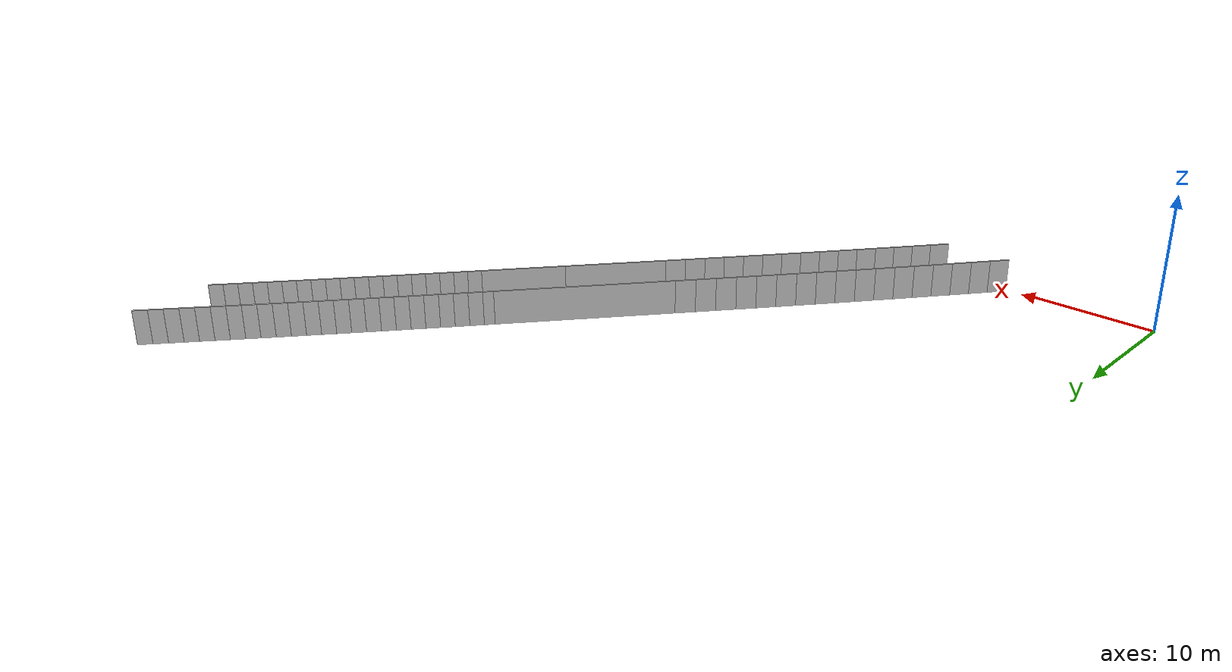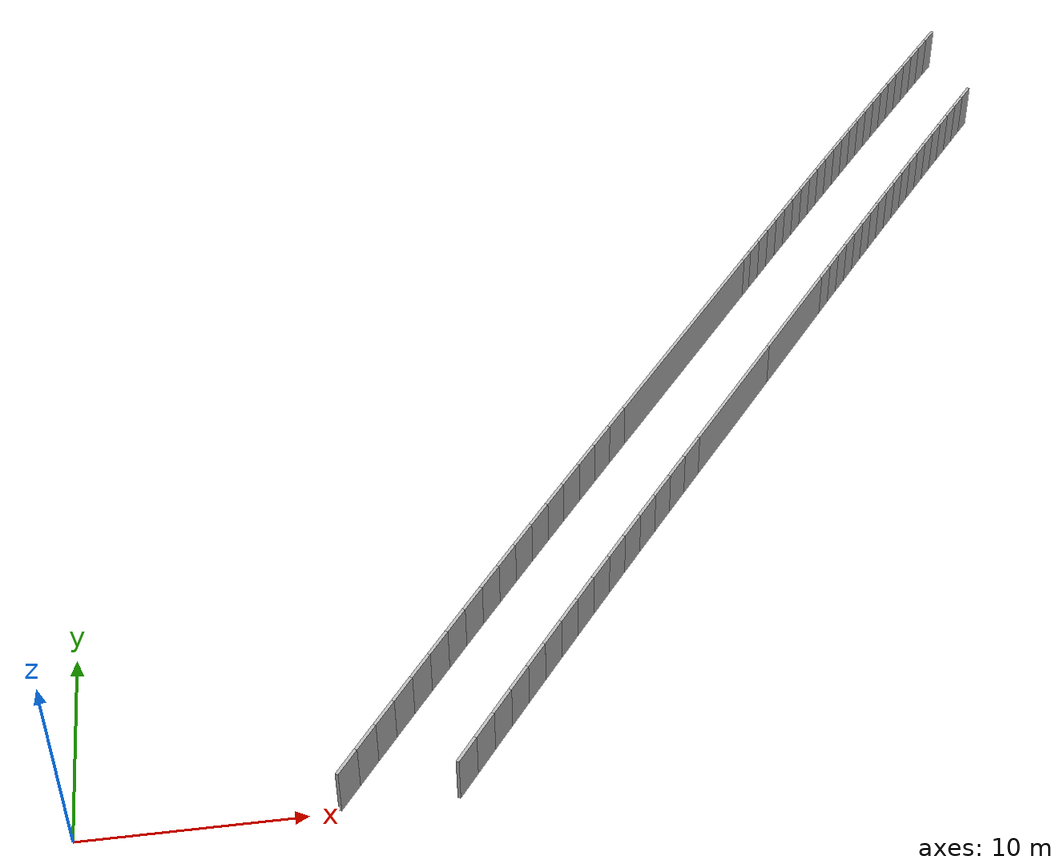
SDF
<?xml version="1.0" ?>
<sdf version="1.6">
  <model name="sps_0637">
    <pose frame="">0 0 0 0 -0 0</pose>
    <static>1</static>
    <self_collide>0</self_collide>
    <allow_auto_disable>0</allow_auto_disable>
    <link name="Wall298">
      <kinematic>0</kinematic>
      <gravity>1</gravity>
      <self_collide>0</self_collide>
      <collision name="collision">
        <geometry>
          <box>
            <size>7.56129 0.15 2.5</size>
          </box>
        </geometry>
        <pose frame="">0 0 0 0 -0 0</pose>
      </collision>
      <visual name="visual">
        <geometry>
          <box>
            <size>7.56129 0.15 2.5</size>
          </box>
        </geometry>
        <pose frame="">0 0 0 0 -0 0</pose>
        <cast_shadows>1</cast_shadows>
        <transparency>0.0</transparency>
      </visual>
      <pose frame="">32.1695 21.0881 1.25 0 -0 0.916836</pose>
    </link>
    <link name="Wall299">
      <kinematic>0</kinematic>
      <gravity>1</gravity>
      <self_collide>0</self_collide>
      <collision name="collision">
        <geometry>
          <box>
            <size>6.16538 0.15 2.5</size>
          </box>
        </geometry>
        <pose frame="">0 0 0 0 -0 0</pose>
      </collision>
      <visual name="visual">
        <geometry>
          <box>
            <size>6.16538 0.15 2.5</size>
          </box>
        </geometry>
        <pose frame="">0 0 0 0 -0 0</pose>
        <cast_shadows>1</cast_shadows>
        <transparency>0.0</transparency>
      </visual>
      <pose frame="">36.3447 26.5354 1.25 0 -0 0.916836</pose>
    </link>
    <link name="Wall442">
      <kinematic>0</kinematic>
      <gravity>1</gravity>
      <self_collide>0</self_collide>
      <collision name="collision">
        <geometry>
          <box>
            <size>0.759106 0.15 2.5</size>
          </box>
        </geometry>
        <pose frame="">0 0 0 0 -0 0</pose>
      </collision>
      <visual name="visual">
        <geometry>
          <box>
            <size>0.759106 0.15 2.5</size>
          </box>
        </geometry>
        <pose frame="">0 0 0 0 -0 0</pose>
        <cast_shadows>1</cast_shadows>
        <transparency>0.0</transparency>
      </visual>
      <pose frame="">34.7003 31.1949 1.25 0 0 -2.22476</pose>
    </link>
    <link name="Wall443">
      <kinematic>0</kinematic>
      <gravity>1</gravity>
      <self_collide>0</self_collide>
      <collision name="collision">
        <geometry>
          <box>
            <size>12.9573 0.15 2.5</size>
          </box>
        </geometry>
        <pose frame="">0 0 0 0 -0 0</pose>
      </collision>
      <visual name="visual">
        <geometry>
          <box>
            <size>12.9573 0.15 2.5</size>
          </box>
        </geometry>
        <pose frame="">0 0 0 0 -0 0</pose>
        <cast_shadows>1</cast_shadows>
        <transparency>0.0</transparency>
      </visual>
      <pose frame="">30.5283 25.7517 1.25 0 0 -2.22476</pose>
    </link>
    <link name="Wall4795">
      <kinematic>0</kinematic>
      <gravity>1</gravity>
      <self_collide>0</self_collide>
      <collision name="collision">
        <geometry>
          <box>
            <size>1.4966 0.15 2.5</size>
          </box>
        </geometry>
        <pose frame="">0 0 0 0 -0 0</pose>
      </collision>
      <visual name="visual">
        <geometry>
          <box>
            <size>1.4966 0.15 2.5</size>
          </box>
        </geometry>
        <pose frame="">0 0 0 0 -0 0</pose>
        <cast_shadows>1</cast_shadows>
        <transparency>0.0</transparency>
      </visual>
      <pose frame="">29.4143 17.4937 1.25 0 0 -2.22504</pose>
    </link>
    <link name="Wall4796">
      <kinematic>0</kinematic>
      <gravity>1</gravity>
      <self_collide>0</self_collide>
      <collision name="collision">
        <geometry>
          <box>
            <size>1.49643 0.15 2.5</size>
          </box>
        </geometry>
        <pose frame="">0 0 0 0 -0 0</pose>
      </collision>
      <visual name="visual">
        <geometry>
          <box>
            <size>1.49643 0.15 2.5</size>
          </box>
        </geometry>
        <pose frame="">0 0 0 0 -0 0</pose>
        <cast_shadows>1</cast_shadows>
        <transparency>0.0</transparency>
      </visual>
      <pose frame="">28.5045 16.3055 1.25 0 0 -2.22348</pose>
    </link>
    <link name="Wall4797">
      <kinematic>0</kinematic>
      <gravity>1</gravity>
      <self_collide>0</self_collide>
      <collision name="collision">
        <geometry>
          <box>
            <size>1.49642 0.15 2.5</size>
          </box>
        </geometry>
        <pose frame="">0 0 0 0 -0 0</pose>
      </collision>
      <visual name="visual">
        <geometry>
          <box>
            <size>1.49642 0.15 2.5</size>
          </box>
        </geometry>
        <pose frame="">0 0 0 0 -0 0</pose>
        <cast_shadows>1</cast_shadows>
        <transparency>0.0</transparency>
      </visual>
      <pose frame="">27.5967 15.1159 1.25 0 0 -2.22179</pose>
    </link>
    <link name="Wall4798">
      <kinematic>0</kinematic>
      <gravity>1</gravity>
      <self_collide>0</self_collide>
      <collision name="collision">
        <geometry>
          <box>
            <size>1.49666 0.15 2.5</size>
          </box>
        </geometry>
        <pose frame="">0 0 0 0 -0 0</pose>
      </collision>
      <visual name="visual">
        <geometry>
          <box>
            <size>1.49666 0.15 2.5</size>
          </box>
        </geometry>
        <pose frame="">0 0 0 0 -0 0</pose>
        <cast_shadows>1</cast_shadows>
        <transparency>0.0</transparency>
      </visual>
      <pose frame="">26.6908 13.9247 1.25 0 0 -2.22019</pose>
    </link>
    <link name="Wall4799">
      <kinematic>0</kinematic>
      <gravity>1</gravity>
      <self_collide>0</self_collide>
      <collision name="collision">
        <geometry>
          <box>
            <size>1.49647 0.15 2.5</size>
          </box>
        </geometry>
        <pose frame="">0 0 0 0 -0 0</pose>
      </collision>
      <visual name="visual">
        <geometry>
          <box>
            <size>1.49647 0.15 2.5</size>
          </box>
        </geometry>
        <pose frame="">0 0 0 0 -0 0</pose>
        <cast_shadows>1</cast_shadows>
        <transparency>0.0</transparency>
      </visual>
      <pose frame="">25.7866 12.7321 1.25 0 0 -2.21874</pose>
    </link>
    <link name="Wall4800">
      <kinematic>0</kinematic>
      <gravity>1</gravity>
      <self_collide>0</self_collide>
      <collision name="collision">
        <geometry>
          <box>
            <size>1.49647 0.15 2.5</size>
          </box>
        </geometry>
        <pose frame="">0 0 0 0 -0 0</pose>
      </collision>
      <visual name="visual">
        <geometry>
          <box>
            <size>1.49647 0.15 2.5</size>
          </box>
        </geometry>
        <pose frame="">0 0 0 0 -0 0</pose>
        <cast_shadows>1</cast_shadows>
        <transparency>0.0</transparency>
      </visual>
      <pose frame="">24.8845 11.5381 1.25 0 0 -2.21691</pose>
    </link>
    <link name="Wall4801">
      <kinematic>0</kinematic>
      <gravity>1</gravity>
      <self_collide>0</self_collide>
      <collision name="collision">
        <geometry>
          <box>
            <size>1.49658 0.15 2.5</size>
          </box>
        </geometry>
        <pose frame="">0 0 0 0 -0 0</pose>
      </collision>
      <visual name="visual">
        <geometry>
          <box>
            <size>1.49658 0.15 2.5</size>
          </box>
        </geometry>
        <pose frame="">0 0 0 0 -0 0</pose>
        <cast_shadows>1</cast_shadows>
        <transparency>0.0</transparency>
      </visual>
      <pose frame="">23.9843 10.3426 1.25 0 0 -2.21552</pose>
    </link>
    <link name="Wall4802">
      <kinematic>0</kinematic>
      <gravity>1</gravity>
      <self_collide>0</self_collide>
      <collision name="collision">
        <geometry>
          <box>
            <size>1.49655 0.15 2.5</size>
          </box>
        </geometry>
        <pose frame="">0 0 0 0 -0 0</pose>
      </collision>
      <visual name="visual">
        <geometry>
          <box>
            <size>1.49655 0.15 2.5</size>
          </box>
        </geometry>
        <pose frame="">0 0 0 0 -0 0</pose>
        <cast_shadows>1</cast_shadows>
        <transparency>0.0</transparency>
      </visual>
      <pose frame="">23.0859 9.14571 1.25 0 0 -2.21386</pose>
    </link>
    <link name="Wall4803">
      <kinematic>0</kinematic>
      <gravity>1</gravity>
      <self_collide>0</self_collide>
      <collision name="collision">
        <geometry>
          <box>
            <size>1.49687 0.15 2.5</size>
          </box>
        </geometry>
        <pose frame="">0 0 0 0 -0 0</pose>
      </collision>
      <visual name="visual">
        <geometry>
          <box>
            <size>1.49687 0.15 2.5</size>
          </box>
        </geometry>
        <pose frame="">0 0 0 0 -0 0</pose>
        <cast_shadows>1</cast_shadows>
        <transparency>0.0</transparency>
      </visual>
      <pose frame="">22.1894 7.94719 1.25 0 0 -2.21217</pose>
    </link>
    <link name="Wall4804">
      <kinematic>0</kinematic>
      <gravity>1</gravity>
      <self_collide>0</self_collide>
      <collision name="collision">
        <geometry>
          <box>
            <size>1.49648 0.15 2.5</size>
          </box>
        </geometry>
        <pose frame="">0 0 0 0 -0 0</pose>
      </collision>
      <visual name="visual">
        <geometry>
          <box>
            <size>1.49648 0.15 2.5</size>
          </box>
        </geometry>
        <pose frame="">0 0 0 0 -0 0</pose>
        <cast_shadows>1</cast_shadows>
        <transparency>0.0</transparency>
      </visual>
      <pose frame="">21.2949 6.7473 1.25 0 0 -2.21073</pose>
    </link>
    <link name="Wall4805">
      <kinematic>0</kinematic>
      <gravity>1</gravity>
      <self_collide>0</self_collide>
      <collision name="collision">
        <geometry>
          <box>
            <size>1.49646 0.15 2.5</size>
          </box>
        </geometry>
        <pose frame="">0 0 0 0 -0 0</pose>
      </collision>
      <visual name="visual">
        <geometry>
          <box>
            <size>1.49646 0.15 2.5</size>
          </box>
        </geometry>
        <pose frame="">0 0 0 0 -0 0</pose>
        <cast_shadows>1</cast_shadows>
        <transparency>0.0</transparency>
      </visual>
      <pose frame="">20.4022 5.54619 1.25 0 0 -2.20907</pose>
    </link>
    <link name="Wall4806">
      <kinematic>0</kinematic>
      <gravity>1</gravity>
      <self_collide>0</self_collide>
      <collision name="collision">
        <geometry>
          <box>
            <size>1.49659 0.15 2.5</size>
          </box>
        </geometry>
        <pose frame="">0 0 0 0 -0 0</pose>
      </collision>
      <visual name="visual">
        <geometry>
          <box>
            <size>1.49659 0.15 2.5</size>
          </box>
        </geometry>
        <pose frame="">0 0 0 0 -0 0</pose>
        <cast_shadows>1</cast_shadows>
        <transparency>0.0</transparency>
      </visual>
      <pose frame="">19.5114 4.34367 1.25 0 0 -2.20768</pose>
    </link>
    <link name="Wall4807">
      <kinematic>0</kinematic>
      <gravity>1</gravity>
      <self_collide>0</self_collide>
      <collision name="collision">
        <geometry>
          <box>
            <size>1.49653 0.15 2.5</size>
          </box>
        </geometry>
        <pose frame="">0 0 0 0 -0 0</pose>
      </collision>
      <visual name="visual">
        <geometry>
          <box>
            <size>1.49653 0.15 2.5</size>
          </box>
        </geometry>
        <pose frame="">0 0 0 0 -0 0</pose>
        <cast_shadows>1</cast_shadows>
        <transparency>0.0</transparency>
      </visual>
      <pose frame="">18.6226 3.13969 1.25 0 0 -2.20584</pose>
    </link>
    <link name="Wall4808">
      <kinematic>0</kinematic>
      <gravity>1</gravity>
      <self_collide>0</self_collide>
      <collision name="collision">
        <geometry>
          <box>
            <size>1.49646 0.15 2.5</size>
          </box>
        </geometry>
        <pose frame="">0 0 0 0 -0 0</pose>
      </collision>
      <visual name="visual">
        <geometry>
          <box>
            <size>1.49646 0.15 2.5</size>
          </box>
        </geometry>
        <pose frame="">0 0 0 0 -0 0</pose>
        <cast_shadows>1</cast_shadows>
        <transparency>0.0</transparency>
      </visual>
      <pose frame="">17.7357 1.93431 1.25 0 0 -2.2044</pose>
    </link>
    <link name="Wall4809">
      <kinematic>0</kinematic>
      <gravity>1</gravity>
      <self_collide>0</self_collide>
      <collision name="collision">
        <geometry>
          <box>
            <size>1.49663 0.15 2.5</size>
          </box>
        </geometry>
        <pose frame="">0 0 0 0 -0 0</pose>
      </collision>
      <visual name="visual">
        <geometry>
          <box>
            <size>1.49663 0.15 2.5</size>
          </box>
        </geometry>
        <pose frame="">0 0 0 0 -0 0</pose>
        <cast_shadows>1</cast_shadows>
        <transparency>0.0</transparency>
      </visual>
      <pose frame="">16.8507 0.727492 1.25 0 0 -2.2027</pose>
    </link>
    <link name="Wall6591">
      <kinematic>0</kinematic>
      <gravity>1</gravity>
      <self_collide>0</self_collide>
      <collision name="collision">
        <geometry>
          <box>
            <size>1.5031 0.15 2.5</size>
          </box>
        </geometry>
        <pose frame="">0 0 0 0 -0 0</pose>
      </collision>
      <visual name="visual">
        <geometry>
          <box>
            <size>1.5031 0.15 2.5</size>
          </box>
        </geometry>
        <pose frame="">0 0 0 0 -0 0</pose>
        <cast_shadows>1</cast_shadows>
        <transparency>0.0</transparency>
      </visual>
      <pose frame="">26.1298 20.0133 1.25 0 0 -2.22494</pose>
    </link>
    <link name="Wall6592">
      <kinematic>0</kinematic>
      <gravity>1</gravity>
      <self_collide>0</self_collide>
      <collision name="collision">
        <geometry>
          <box>
            <size>1.50314 0.15 2.5</size>
          </box>
        </geometry>
        <pose frame="">0 0 0 0 -0 0</pose>
      </collision>
      <visual name="visual">
        <geometry>
          <box>
            <size>1.50314 0.15 2.5</size>
          </box>
        </geometry>
        <pose frame="">0 0 0 0 -0 0</pose>
        <cast_shadows>1</cast_shadows>
        <transparency>0.0</transparency>
      </visual>
      <pose frame="">25.2161 18.8197 1.25 0 0 -2.22324</pose>
    </link>
    <link name="Wall6593">
      <kinematic>0</kinematic>
      <gravity>1</gravity>
      <self_collide>0</self_collide>
      <collision name="collision">
        <geometry>
          <box>
            <size>1.503 0.15 2.5</size>
          </box>
        </geometry>
        <pose frame="">0 0 0 0 -0 0</pose>
      </collision>
      <visual name="visual">
        <geometry>
          <box>
            <size>1.503 0.15 2.5</size>
          </box>
        </geometry>
        <pose frame="">0 0 0 0 -0 0</pose>
        <cast_shadows>1</cast_shadows>
        <transparency>0.0</transparency>
      </visual>
      <pose frame="">24.3045 17.6247 1.25 0 0 -2.22178</pose>
    </link>
    <link name="Wall6594">
      <kinematic>0</kinematic>
      <gravity>1</gravity>
      <self_collide>0</self_collide>
      <collision name="collision">
        <geometry>
          <box>
            <size>1.50319 0.15 2.5</size>
          </box>
        </geometry>
        <pose frame="">0 0 0 0 -0 0</pose>
      </collision>
      <visual name="visual">
        <geometry>
          <box>
            <size>1.50319 0.15 2.5</size>
          </box>
        </geometry>
        <pose frame="">0 0 0 0 -0 0</pose>
        <cast_shadows>1</cast_shadows>
        <transparency>0.0</transparency>
      </visual>
      <pose frame="">23.3946 16.4283 1.25 0 0 -2.2202</pose>
    </link>
    <link name="Wall6595">
      <kinematic>0</kinematic>
      <gravity>1</gravity>
      <self_collide>0</self_collide>
      <collision name="collision">
        <geometry>
          <box>
            <size>1.50327 0.15 2.5</size>
          </box>
        </geometry>
        <pose frame="">0 0 0 0 -0 0</pose>
      </collision>
      <visual name="visual">
        <geometry>
          <box>
            <size>1.50327 0.15 2.5</size>
          </box>
        </geometry>
        <pose frame="">0 0 0 0 -0 0</pose>
        <cast_shadows>1</cast_shadows>
        <transparency>0.0</transparency>
      </visual>
      <pose frame="">22.4866 15.2303 1.25 0 0 -2.21853</pose>
    </link>
    <link name="Wall6596">
      <kinematic>0</kinematic>
      <gravity>1</gravity>
      <self_collide>0</self_collide>
      <collision name="collision">
        <geometry>
          <box>
            <size>1.50309 0.15 2.5</size>
          </box>
        </geometry>
        <pose frame="">0 0 0 0 -0 0</pose>
      </collision>
      <visual name="visual">
        <geometry>
          <box>
            <size>1.50309 0.15 2.5</size>
          </box>
        </geometry>
        <pose frame="">0 0 0 0 -0 0</pose>
        <cast_shadows>1</cast_shadows>
        <transparency>0.0</transparency>
      </visual>
      <pose frame="">21.5804 14.0309 1.25 0 0 -2.21709</pose>
    </link>
    <link name="Wall6597">
      <kinematic>0</kinematic>
      <gravity>1</gravity>
      <self_collide>0</self_collide>
      <collision name="collision">
        <geometry>
          <box>
            <size>1.50305 0.15 2.5</size>
          </box>
        </geometry>
        <pose frame="">0 0 0 0 -0 0</pose>
      </collision>
      <visual name="visual">
        <geometry>
          <box>
            <size>1.50305 0.15 2.5</size>
          </box>
        </geometry>
        <pose frame="">0 0 0 0 -0 0</pose>
        <cast_shadows>1</cast_shadows>
        <transparency>0.0</transparency>
      </visual>
      <pose frame="">20.6762 12.8302 1.25 0 0 -2.21543</pose>
    </link>
    <link name="Wall6598">
      <kinematic>0</kinematic>
      <gravity>1</gravity>
      <self_collide>0</self_collide>
      <collision name="collision">
        <geometry>
          <box>
            <size>1.50322 0.15 2.5</size>
          </box>
        </geometry>
        <pose frame="">0 0 0 0 -0 0</pose>
      </collision>
      <visual name="visual">
        <geometry>
          <box>
            <size>1.50322 0.15 2.5</size>
          </box>
        </geometry>
        <pose frame="">0 0 0 0 -0 0</pose>
        <cast_shadows>1</cast_shadows>
        <transparency>0.0</transparency>
      </visual>
      <pose frame="">19.7739 11.628 1.25 0 0 -2.21383</pose>
    </link>
    <link name="Wall6599">
      <kinematic>0</kinematic>
      <gravity>1</gravity>
      <self_collide>0</self_collide>
      <collision name="collision">
        <geometry>
          <box>
            <size>1.50314 0.15 2.5</size>
          </box>
        </geometry>
        <pose frame="">0 0 0 0 -0 0</pose>
      </collision>
      <visual name="visual">
        <geometry>
          <box>
            <size>1.50314 0.15 2.5</size>
          </box>
        </geometry>
        <pose frame="">0 0 0 0 -0 0</pose>
        <cast_shadows>1</cast_shadows>
        <transparency>0.0</transparency>
      </visual>
      <pose frame="">18.8735 10.4244 1.25 0 0 -2.2124</pose>
    </link>
    <link name="Wall6600">
      <kinematic>0</kinematic>
      <gravity>1</gravity>
      <self_collide>0</self_collide>
      <collision name="collision">
        <geometry>
          <box>
            <size>1.5029 0.15 2.5</size>
          </box>
        </geometry>
        <pose frame="">0 0 0 0 -0 0</pose>
      </collision>
      <visual name="visual">
        <geometry>
          <box>
            <size>1.5029 0.15 2.5</size>
          </box>
        </geometry>
        <pose frame="">0 0 0 0 -0 0</pose>
        <cast_shadows>1</cast_shadows>
        <transparency>0.0</transparency>
      </visual>
      <pose frame="">17.975 9.2195 1.25 0 0 -2.21069</pose>
    </link>
    <link name="Wall6601">
      <kinematic>0</kinematic>
      <gravity>1</gravity>
      <self_collide>0</self_collide>
      <collision name="collision">
        <geometry>
          <box>
            <size>1.50302 0.15 2.5</size>
          </box>
        </geometry>
        <pose frame="">0 0 0 0 -0 0</pose>
      </collision>
      <visual name="visual">
        <geometry>
          <box>
            <size>1.50302 0.15 2.5</size>
          </box>
        </geometry>
        <pose frame="">0 0 0 0 -0 0</pose>
        <cast_shadows>1</cast_shadows>
        <transparency>0.0</transparency>
      </visual>
      <pose frame="">17.0785 8.0132 1.25 0 0 -2.20916</pose>
    </link>
    <link name="Wall6602">
      <kinematic>0</kinematic>
      <gravity>1</gravity>
      <self_collide>0</self_collide>
      <collision name="collision">
        <geometry>
          <box>
            <size>1.50321 0.15 2.5</size>
          </box>
        </geometry>
        <pose frame="">0 0 0 0 -0 0</pose>
      </collision>
      <visual name="visual">
        <geometry>
          <box>
            <size>1.50321 0.15 2.5</size>
          </box>
        </geometry>
        <pose frame="">0 0 0 0 -0 0</pose>
        <cast_shadows>1</cast_shadows>
        <transparency>0.0</transparency>
      </visual>
      <pose frame="">16.1837 6.80537 1.25 0 0 -2.20756</pose>
    </link>
    <link name="Wall6603">
      <kinematic>0</kinematic>
      <gravity>1</gravity>
      <self_collide>0</self_collide>
      <collision name="collision">
        <geometry>
          <box>
            <size>1.50309 0.15 2.5</size>
          </box>
        </geometry>
        <pose frame="">0 0 0 0 -0 0</pose>
      </collision>
      <visual name="visual">
        <geometry>
          <box>
            <size>1.50309 0.15 2.5</size>
          </box>
        </geometry>
        <pose frame="">0 0 0 0 -0 0</pose>
        <cast_shadows>1</cast_shadows>
        <transparency>0.0</transparency>
      </visual>
      <pose frame="">15.2909 5.59608 1.25 0 0 -2.20595</pose>
    </link>
    <link name="Wall6604">
      <kinematic>0</kinematic>
      <gravity>1</gravity>
      <self_collide>0</self_collide>
      <collision name="collision">
        <geometry>
          <box>
            <size>1.50308 0.15 2.5</size>
          </box>
        </geometry>
        <pose frame="">0 0 0 0 -0 0</pose>
      </collision>
      <visual name="visual">
        <geometry>
          <box>
            <size>1.50308 0.15 2.5</size>
          </box>
        </geometry>
        <pose frame="">0 0 0 0 -0 0</pose>
        <cast_shadows>1</cast_shadows>
        <transparency>0.0</transparency>
      </visual>
      <pose frame="">14.4002 4.38539 1.25 0 0 -2.20429</pose>
    </link>
    <link name="Wall6605">
      <kinematic>0</kinematic>
      <gravity>1</gravity>
      <self_collide>0</self_collide>
      <collision name="collision">
        <geometry>
          <box>
            <size>1.50311 0.15 2.5</size>
          </box>
        </geometry>
        <pose frame="">0 0 0 0 -0 0</pose>
      </collision>
      <visual name="visual">
        <geometry>
          <box>
            <size>1.50311 0.15 2.5</size>
          </box>
        </geometry>
        <pose frame="">0 0 0 0 -0 0</pose>
        <cast_shadows>1</cast_shadows>
        <transparency>0.0</transparency>
      </visual>
      <pose frame="">13.5113 3.17329 1.25 0 0 -2.20281</pose>
    </link>
    <link name="Wall6606">
      <kinematic>0</kinematic>
      <gravity>1</gravity>
      <self_collide>0</self_collide>
      <collision name="collision">
        <geometry>
          <box>
            <size>1.50314 0.15 2.5</size>
          </box>
        </geometry>
        <pose frame="">0 0 0 0 -0 0</pose>
      </collision>
      <visual name="visual">
        <geometry>
          <box>
            <size>1.50314 0.15 2.5</size>
          </box>
        </geometry>
        <pose frame="">0 0 0 0 -0 0</pose>
        <cast_shadows>1</cast_shadows>
        <transparency>0.0</transparency>
      </visual>
      <pose frame="">12.6243 1.95979 1.25 0 0 -2.20119</pose>
    </link>
    <link name="Wall6607">
      <kinematic>0</kinematic>
      <gravity>1</gravity>
      <self_collide>0</self_collide>
      <collision name="collision">
        <geometry>
          <box>
            <size>1.50286 0.15 2.5</size>
          </box>
        </geometry>
        <pose frame="">0 0 0 0 -0 0</pose>
      </collision>
      <visual name="visual">
        <geometry>
          <box>
            <size>1.50286 0.15 2.5</size>
          </box>
        </geometry>
        <pose frame="">0 0 0 0 -0 0</pose>
        <cast_shadows>1</cast_shadows>
        <transparency>0.0</transparency>
      </visual>
      <pose frame="">11.7392 0.744979 1.25 0 0 -2.19962</pose>
    </link>
    <link name="Wall9991">
      <kinematic>0</kinematic>
      <gravity>1</gravity>
      <self_collide>0</self_collide>
      <collision name="collision">
        <geometry>
          <box>
            <size>1.01905 0.15 2.5</size>
          </box>
        </geometry>
        <pose frame="">0 0 0 0 -0 0</pose>
      </collision>
      <visual name="visual">
        <geometry>
          <box>
            <size>1.01905 0.15 2.5</size>
          </box>
        </geometry>
        <pose frame="">0 0 0 0 -0 0</pose>
        <cast_shadows>1</cast_shadows>
        <transparency>0.0</transparency>
      </visual>
      <pose frame="">49.0699 49.5492 1.25 0 0 -2.24731</pose>
    </link>
    <link name="Wall9992">
      <kinematic>0</kinematic>
      <gravity>1</gravity>
      <self_collide>0</self_collide>
      <collision name="collision">
        <geometry>
          <box>
            <size>1.01912 0.15 2.5</size>
          </box>
        </geometry>
        <pose frame="">0 0 0 0 -0 0</pose>
      </collision>
      <visual name="visual">
        <geometry>
          <box>
            <size>1.01912 0.15 2.5</size>
          </box>
        </geometry>
        <pose frame="">0 0 0 0 -0 0</pose>
        <cast_shadows>1</cast_shadows>
        <transparency>0.0</transparency>
      </visual>
      <pose frame="">48.4323 48.7542 1.25 0 0 -2.24625</pose>
    </link>
    <link name="Wall9993">
      <kinematic>0</kinematic>
      <gravity>1</gravity>
      <self_collide>0</self_collide>
      <collision name="collision">
        <geometry>
          <box>
            <size>1.01915 0.15 2.5</size>
          </box>
        </geometry>
        <pose frame="">0 0 0 0 -0 0</pose>
      </collision>
      <visual name="visual">
        <geometry>
          <box>
            <size>1.01915 0.15 2.5</size>
          </box>
        </geometry>
        <pose frame="">0 0 0 0 -0 0</pose>
        <cast_shadows>1</cast_shadows>
        <transparency>0.0</transparency>
      </visual>
      <pose frame="">47.7955 47.9585 1.25 0 0 -2.24523</pose>
    </link>
    <link name="Wall9994">
      <kinematic>0</kinematic>
      <gravity>1</gravity>
      <self_collide>0</self_collide>
      <collision name="collision">
        <geometry>
          <box>
            <size>1.01912 0.15 2.5</size>
          </box>
        </geometry>
        <pose frame="">0 0 0 0 -0 0</pose>
      </collision>
      <visual name="visual">
        <geometry>
          <box>
            <size>1.01912 0.15 2.5</size>
          </box>
        </geometry>
        <pose frame="">0 0 0 0 -0 0</pose>
        <cast_shadows>1</cast_shadows>
        <transparency>0.0</transparency>
      </visual>
      <pose frame="">47.1596 47.1621 1.25 0 0 -2.24395</pose>
    </link>
    <link name="Wall9995">
      <kinematic>0</kinematic>
      <gravity>1</gravity>
      <self_collide>0</self_collide>
      <collision name="collision">
        <geometry>
          <box>
            <size>1.01929 0.15 2.5</size>
          </box>
        </geometry>
        <pose frame="">0 0 0 0 -0 0</pose>
      </collision>
      <visual name="visual">
        <geometry>
          <box>
            <size>1.01929 0.15 2.5</size>
          </box>
        </geometry>
        <pose frame="">0 0 0 0 -0 0</pose>
        <cast_shadows>1</cast_shadows>
        <transparency>0.0</transparency>
      </visual>
      <pose frame="">46.5246 46.3649 1.25 0 0 -2.2429</pose>
    </link>
    <link name="Wall9996">
      <kinematic>0</kinematic>
      <gravity>1</gravity>
      <self_collide>0</self_collide>
      <collision name="collision">
        <geometry>
          <box>
            <size>1.01938 0.15 2.5</size>
          </box>
        </geometry>
        <pose frame="">0 0 0 0 -0 0</pose>
      </collision>
      <visual name="visual">
        <geometry>
          <box>
            <size>1.01938 0.15 2.5</size>
          </box>
        </geometry>
        <pose frame="">0 0 0 0 -0 0</pose>
        <cast_shadows>1</cast_shadows>
        <transparency>0.0</transparency>
      </visual>
      <pose frame="">45.8903 45.5669 1.25 0 0 -2.24176</pose>
    </link>
    <link name="Wall9997">
      <kinematic>0</kinematic>
      <gravity>1</gravity>
      <self_collide>0</self_collide>
      <collision name="collision">
        <geometry>
          <box>
            <size>1.01917 0.15 2.5</size>
          </box>
        </geometry>
        <pose frame="">0 0 0 0 -0 0</pose>
      </collision>
      <visual name="visual">
        <geometry>
          <box>
            <size>1.01917 0.15 2.5</size>
          </box>
        </geometry>
        <pose frame="">0 0 0 0 -0 0</pose>
        <cast_shadows>1</cast_shadows>
        <transparency>0.0</transparency>
      </visual>
      <pose frame="">45.2569 44.7683 1.25 0 0 -2.24093</pose>
    </link>
    <link name="Wall9998">
      <kinematic>0</kinematic>
      <gravity>1</gravity>
      <self_collide>0</self_collide>
      <collision name="collision">
        <geometry>
          <box>
            <size>1.01909 0.15 2.5</size>
          </box>
        </geometry>
        <pose frame="">0 0 0 0 -0 0</pose>
      </collision>
      <visual name="visual">
        <geometry>
          <box>
            <size>1.01909 0.15 2.5</size>
          </box>
        </geometry>
        <pose frame="">0 0 0 0 -0 0</pose>
        <cast_shadows>1</cast_shadows>
        <transparency>0.0</transparency>
      </visual>
      <pose frame="">44.6244 43.9692 1.25 0 0 -2.23977</pose>
    </link>
    <link name="Wall9999">
      <kinematic>0</kinematic>
      <gravity>1</gravity>
      <self_collide>0</self_collide>
      <collision name="collision">
        <geometry>
          <box>
            <size>1.01914 0.15 2.5</size>
          </box>
        </geometry>
        <pose frame="">0 0 0 0 -0 0</pose>
      </collision>
      <visual name="visual">
        <geometry>
          <box>
            <size>1.01914 0.15 2.5</size>
          </box>
        </geometry>
        <pose frame="">0 0 0 0 -0 0</pose>
        <cast_shadows>1</cast_shadows>
        <transparency>0.0</transparency>
      </visual>
      <pose frame="">43.9929 43.1694 1.25 0 0 -2.23866</pose>
    </link>
    <link name="Wall10000">
      <kinematic>0</kinematic>
      <gravity>1</gravity>
      <self_collide>0</self_collide>
      <collision name="collision">
        <geometry>
          <box>
            <size>1.01936 0.15 2.5</size>
          </box>
        </geometry>
        <pose frame="">0 0 0 0 -0 0</pose>
      </collision>
      <visual name="visual">
        <geometry>
          <box>
            <size>1.01936 0.15 2.5</size>
          </box>
        </geometry>
        <pose frame="">0 0 0 0 -0 0</pose>
        <cast_shadows>1</cast_shadows>
        <transparency>0.0</transparency>
      </visual>
      <pose frame="">43.3621 42.3688 1.25 0 0 -2.23758</pose>
    </link>
    <link name="Wall10001">
      <kinematic>0</kinematic>
      <gravity>1</gravity>
      <self_collide>0</self_collide>
      <collision name="collision">
        <geometry>
          <box>
            <size>1.019 0.15 2.5</size>
          </box>
        </geometry>
        <pose frame="">0 0 0 0 -0 0</pose>
      </collision>
      <visual name="visual">
        <geometry>
          <box>
            <size>1.019 0.15 2.5</size>
          </box>
        </geometry>
        <pose frame="">0 0 0 0 -0 0</pose>
        <cast_shadows>1</cast_shadows>
        <transparency>0.0</transparency>
      </visual>
      <pose frame="">42.7321 41.5676 1.25 0 0 -2.23656</pose>
    </link>
    <link name="Wall10002">
      <kinematic>0</kinematic>
      <gravity>1</gravity>
      <self_collide>0</self_collide>
      <collision name="collision">
        <geometry>
          <box>
            <size>1.01914 0.15 2.5</size>
          </box>
        </geometry>
        <pose frame="">0 0 0 0 -0 0</pose>
      </collision>
      <visual name="visual">
        <geometry>
          <box>
            <size>1.01914 0.15 2.5</size>
          </box>
        </geometry>
        <pose frame="">0 0 0 0 -0 0</pose>
        <cast_shadows>1</cast_shadows>
        <transparency>0.0</transparency>
      </visual>
      <pose frame="">42.1031 40.7658 1.25 0 0 -2.23546</pose>
    </link>
    <link name="Wall10003">
      <kinematic>0</kinematic>
      <gravity>1</gravity>
      <self_collide>0</self_collide>
      <collision name="collision">
        <geometry>
          <box>
            <size>1.01927 0.15 2.5</size>
          </box>
        </geometry>
        <pose frame="">0 0 0 0 -0 0</pose>
      </collision>
      <visual name="visual">
        <geometry>
          <box>
            <size>1.01927 0.15 2.5</size>
          </box>
        </geometry>
        <pose frame="">0 0 0 0 -0 0</pose>
        <cast_shadows>1</cast_shadows>
        <transparency>0.0</transparency>
      </visual>
      <pose frame="">41.4749 39.9632 1.25 0 0 -2.23437</pose>
    </link>
    <link name="Wall10004">
      <kinematic>0</kinematic>
      <gravity>1</gravity>
      <self_collide>0</self_collide>
      <collision name="collision">
        <geometry>
          <box>
            <size>1.01916 0.15 2.5</size>
          </box>
        </geometry>
        <pose frame="">0 0 0 0 -0 0</pose>
      </collision>
      <visual name="visual">
        <geometry>
          <box>
            <size>1.01916 0.15 2.5</size>
          </box>
        </geometry>
        <pose frame="">0 0 0 0 -0 0</pose>
        <cast_shadows>1</cast_shadows>
        <transparency>0.0</transparency>
      </visual>
      <pose frame="">40.8476 39.1599 1.25 0 0 -2.23316</pose>
    </link>
    <link name="Wall10005">
      <kinematic>0</kinematic>
      <gravity>1</gravity>
      <self_collide>0</self_collide>
      <collision name="collision">
        <geometry>
          <box>
            <size>1.01915 0.15 2.5</size>
          </box>
        </geometry>
        <pose frame="">0 0 0 0 -0 0</pose>
      </collision>
      <visual name="visual">
        <geometry>
          <box>
            <size>1.01915 0.15 2.5</size>
          </box>
        </geometry>
        <pose frame="">0 0 0 0 -0 0</pose>
        <cast_shadows>1</cast_shadows>
        <transparency>0.0</transparency>
      </visual>
      <pose frame="">40.2212 38.356 1.25 0 0 -2.23226</pose>
    </link>
    <link name="Wall10006">
      <kinematic>0</kinematic>
      <gravity>1</gravity>
      <self_collide>0</self_collide>
      <collision name="collision">
        <geometry>
          <box>
            <size>1.01906 0.15 2.5</size>
          </box>
        </geometry>
        <pose frame="">0 0 0 0 -0 0</pose>
      </collision>
      <visual name="visual">
        <geometry>
          <box>
            <size>1.01906 0.15 2.5</size>
          </box>
        </geometry>
        <pose frame="">0 0 0 0 -0 0</pose>
        <cast_shadows>1</cast_shadows>
        <transparency>0.0</transparency>
      </visual>
      <pose frame="">39.5956 37.5515 1.25 0 0 -2.23127</pose>
    </link>
    <link name="Wall10007">
      <kinematic>0</kinematic>
      <gravity>1</gravity>
      <self_collide>0</self_collide>
      <collision name="collision">
        <geometry>
          <box>
            <size>1.01913 0.15 2.5</size>
          </box>
        </geometry>
        <pose frame="">0 0 0 0 -0 0</pose>
      </collision>
      <visual name="visual">
        <geometry>
          <box>
            <size>1.01913 0.15 2.5</size>
          </box>
        </geometry>
        <pose frame="">0 0 0 0 -0 0</pose>
        <cast_shadows>1</cast_shadows>
        <transparency>0.0</transparency>
      </visual>
      <pose frame="">38.9709 36.7463 1.25 0 0 -2.23</pose>
    </link>
    <link name="Wall10008">
      <kinematic>0</kinematic>
      <gravity>1</gravity>
      <self_collide>0</self_collide>
      <collision name="collision">
        <geometry>
          <box>
            <size>1.01924 0.15 2.5</size>
          </box>
        </geometry>
        <pose frame="">0 0 0 0 -0 0</pose>
      </collision>
      <visual name="visual">
        <geometry>
          <box>
            <size>1.01924 0.15 2.5</size>
          </box>
        </geometry>
        <pose frame="">0 0 0 0 -0 0</pose>
        <cast_shadows>1</cast_shadows>
        <transparency>0.0</transparency>
      </visual>
      <pose frame="">38.347 35.9404 1.25 0 0 -2.22916</pose>
    </link>
    <link name="Wall10009">
      <kinematic>0</kinematic>
      <gravity>1</gravity>
      <self_collide>0</self_collide>
      <collision name="collision">
        <geometry>
          <box>
            <size>1.01898 0.15 2.5</size>
          </box>
        </geometry>
        <pose frame="">0 0 0 0 -0 0</pose>
      </collision>
      <visual name="visual">
        <geometry>
          <box>
            <size>1.01898 0.15 2.5</size>
          </box>
        </geometry>
        <pose frame="">0 0 0 0 -0 0</pose>
        <cast_shadows>1</cast_shadows>
        <transparency>0.0</transparency>
      </visual>
      <pose frame="">37.7241 35.1339 1.25 0 0 -2.22785</pose>
    </link>
    <link name="Wall10010">
      <kinematic>0</kinematic>
      <gravity>1</gravity>
      <self_collide>0</self_collide>
      <collision name="collision">
        <geometry>
          <box>
            <size>1.01927 0.15 2.5</size>
          </box>
        </geometry>
        <pose frame="">0 0 0 0 -0 0</pose>
      </collision>
      <visual name="visual">
        <geometry>
          <box>
            <size>1.01927 0.15 2.5</size>
          </box>
        </geometry>
        <pose frame="">0 0 0 0 -0 0</pose>
        <cast_shadows>1</cast_shadows>
        <transparency>0.0</transparency>
      </visual>
      <pose frame="">37.102 34.3267 1.25 0 0 -2.22694</pose>
    </link>
    <link name="Wall10011">
      <kinematic>0</kinematic>
      <gravity>1</gravity>
      <self_collide>0</self_collide>
      <collision name="collision">
        <geometry>
          <box>
            <size>1.01922 0.15 2.5</size>
          </box>
        </geometry>
        <pose frame="">0 0 0 0 -0 0</pose>
      </collision>
      <visual name="visual">
        <geometry>
          <box>
            <size>1.01922 0.15 2.5</size>
          </box>
        </geometry>
        <pose frame="">0 0 0 0 -0 0</pose>
        <cast_shadows>1</cast_shadows>
        <transparency>0.0</transparency>
      </visual>
      <pose frame="">36.4806 33.5187 1.25 0 0 -2.2257</pose>
    </link>
    <link name="Wall10012">
      <kinematic>0</kinematic>
      <gravity>1</gravity>
      <self_collide>0</self_collide>
      <collision name="collision">
        <geometry>
          <box>
            <size>1.01901 0.15 2.5</size>
          </box>
        </geometry>
        <pose frame="">0 0 0 0 -0 0</pose>
      </collision>
      <visual name="visual">
        <geometry>
          <box>
            <size>1.01901 0.15 2.5</size>
          </box>
        </geometry>
        <pose frame="">0 0 0 0 -0 0</pose>
        <cast_shadows>1</cast_shadows>
        <transparency>0.0</transparency>
      </visual>
      <pose frame="">35.8603 32.7101 1.25 0 0 -2.22465</pose>
    </link>
    <link name="Wall10013">
      <kinematic>0</kinematic>
      <gravity>1</gravity>
      <self_collide>0</self_collide>
      <collision name="collision">
        <geometry>
          <box>
            <size>1.01922 0.15 2.5</size>
          </box>
        </geometry>
        <pose frame="">0 0 0 0 -0 0</pose>
      </collision>
      <visual name="visual">
        <geometry>
          <box>
            <size>1.01922 0.15 2.5</size>
          </box>
        </geometry>
        <pose frame="">0 0 0 0 -0 0</pose>
        <cast_shadows>1</cast_shadows>
        <transparency>0.0</transparency>
      </visual>
      <pose frame="">35.2408 31.9009 1.25 0 0 -2.22374</pose>
    </link>
    <link name="Wall10040">
      <kinematic>0</kinematic>
      <gravity>1</gravity>
      <self_collide>0</self_collide>
      <collision name="collision">
        <geometry>
          <box>
            <size>1.01394 0.15 2.5</size>
          </box>
        </geometry>
        <pose frame="">0 0 0 0 -0 0</pose>
      </collision>
      <visual name="visual">
        <geometry>
          <box>
            <size>1.01394 0.15 2.5</size>
          </box>
        </geometry>
        <pose frame="">0 0 0 0 -0 0</pose>
        <cast_shadows>1</cast_shadows>
        <transparency>0.0</transparency>
      </visual>
      <pose frame="">49.7558 43.779 1.25 0 0 -2.24294</pose>
    </link>
    <link name="Wall10041">
      <kinematic>0</kinematic>
      <gravity>1</gravity>
      <self_collide>0</self_collide>
      <collision name="collision">
        <geometry>
          <box>
            <size>1.01425 0.15 2.5</size>
          </box>
        </geometry>
        <pose frame="">0 0 0 0 -0 0</pose>
      </collision>
      <visual name="visual">
        <geometry>
          <box>
            <size>1.01425 0.15 2.5</size>
          </box>
        </geometry>
        <pose frame="">0 0 0 0 -0 0</pose>
        <cast_shadows>1</cast_shadows>
        <transparency>0.0</transparency>
      </visual>
      <pose frame="">49.1248 42.9851 1.25 0 0 -2.24178</pose>
    </link>
    <link name="Wall10042">
      <kinematic>0</kinematic>
      <gravity>1</gravity>
      <self_collide>0</self_collide>
      <collision name="collision">
        <geometry>
          <box>
            <size>1.01424 0.15 2.5</size>
          </box>
        </geometry>
        <pose frame="">0 0 0 0 -0 0</pose>
      </collision>
      <visual name="visual">
        <geometry>
          <box>
            <size>1.01424 0.15 2.5</size>
          </box>
        </geometry>
        <pose frame="">0 0 0 0 -0 0</pose>
        <cast_shadows>1</cast_shadows>
        <transparency>0.0</transparency>
      </visual>
      <pose frame="">48.4946 42.1904 1.25 0 0 -2.24079</pose>
    </link>
    <link name="Wall10043">
      <kinematic>0</kinematic>
      <gravity>1</gravity>
      <self_collide>0</self_collide>
      <collision name="collision">
        <geometry>
          <box>
            <size>1.01423 0.15 2.5</size>
          </box>
        </geometry>
        <pose frame="">0 0 0 0 -0 0</pose>
      </collision>
      <visual name="visual">
        <geometry>
          <box>
            <size>1.01423 0.15 2.5</size>
          </box>
        </geometry>
        <pose frame="">0 0 0 0 -0 0</pose>
        <cast_shadows>1</cast_shadows>
        <transparency>0.0</transparency>
      </visual>
      <pose frame="">47.8652 41.3951 1.25 0 0 -2.23972</pose>
    </link>
    <link name="Wall10044">
      <kinematic>0</kinematic>
      <gravity>1</gravity>
      <self_collide>0</self_collide>
      <collision name="collision">
        <geometry>
          <box>
            <size>1.01424 0.15 2.5</size>
          </box>
        </geometry>
        <pose frame="">0 0 0 0 -0 0</pose>
      </collision>
      <visual name="visual">
        <geometry>
          <box>
            <size>1.01424 0.15 2.5</size>
          </box>
        </geometry>
        <pose frame="">0 0 0 0 -0 0</pose>
        <cast_shadows>1</cast_shadows>
        <transparency>0.0</transparency>
      </visual>
      <pose frame="">47.2367 40.5991 1.25 0 0 -2.23856</pose>
    </link>
    <link name="Wall10045">
      <kinematic>0</kinematic>
      <gravity>1</gravity>
      <self_collide>0</self_collide>
      <collision name="collision">
        <geometry>
          <box>
            <size>1.01405 0.15 2.5</size>
          </box>
        </geometry>
        <pose frame="">0 0 0 0 -0 0</pose>
      </collision>
      <visual name="visual">
        <geometry>
          <box>
            <size>1.01405 0.15 2.5</size>
          </box>
        </geometry>
        <pose frame="">0 0 0 0 -0 0</pose>
        <cast_shadows>1</cast_shadows>
        <transparency>0.0</transparency>
      </visual>
      <pose frame="">46.609 39.8025 1.25 0 0 -2.23764</pose>
    </link>
    <link name="Wall10046">
      <kinematic>0</kinematic>
      <gravity>1</gravity>
      <self_collide>0</self_collide>
      <collision name="collision">
        <geometry>
          <box>
            <size>1.01447 0.15 2.5</size>
          </box>
        </geometry>
        <pose frame="">0 0 0 0 -0 0</pose>
      </collision>
      <visual name="visual">
        <geometry>
          <box>
            <size>1.01447 0.15 2.5</size>
          </box>
        </geometry>
        <pose frame="">0 0 0 0 -0 0</pose>
        <cast_shadows>1</cast_shadows>
        <transparency>0.0</transparency>
      </visual>
      <pose frame="">45.9822 39.0051 1.25 0 0 -2.23632</pose>
    </link>
    <link name="Wall10047">
      <kinematic>0</kinematic>
      <gravity>1</gravity>
      <self_collide>0</self_collide>
      <collision name="collision">
        <geometry>
          <box>
            <size>1.01416 0.15 2.5</size>
          </box>
        </geometry>
        <pose frame="">0 0 0 0 -0 0</pose>
      </collision>
      <visual name="visual">
        <geometry>
          <box>
            <size>1.01416 0.15 2.5</size>
          </box>
        </geometry>
        <pose frame="">0 0 0 0 -0 0</pose>
        <cast_shadows>1</cast_shadows>
        <transparency>0.0</transparency>
      </visual>
      <pose frame="">45.3563 38.2069 1.25 0 0 -2.23525</pose>
    </link>
    <link name="Wall10048">
      <kinematic>0</kinematic>
      <gravity>1</gravity>
      <self_collide>0</self_collide>
      <collision name="collision">
        <geometry>
          <box>
            <size>1.01419 0.15 2.5</size>
          </box>
        </geometry>
        <pose frame="">0 0 0 0 -0 0</pose>
      </collision>
      <visual name="visual">
        <geometry>
          <box>
            <size>1.01419 0.15 2.5</size>
          </box>
        </geometry>
        <pose frame="">0 0 0 0 -0 0</pose>
        <cast_shadows>1</cast_shadows>
        <transparency>0.0</transparency>
      </visual>
      <pose frame="">44.7313 37.4082 1.25 0 0 -2.23431</pose>
    </link>
    <link name="Wall10049">
      <kinematic>0</kinematic>
      <gravity>1</gravity>
      <self_collide>0</self_collide>
      <collision name="collision">
        <geometry>
          <box>
            <size>1.0141 0.15 2.5</size>
          </box>
        </geometry>
        <pose frame="">0 0 0 0 -0 0</pose>
      </collision>
      <visual name="visual">
        <geometry>
          <box>
            <size>1.0141 0.15 2.5</size>
          </box>
        </geometry>
        <pose frame="">0 0 0 0 -0 0</pose>
        <cast_shadows>1</cast_shadows>
        <transparency>0.0</transparency>
      </visual>
      <pose frame="">44.1071 36.6089 1.25 0 0 -2.23332</pose>
    </link>
    <link name="Wall10050">
      <kinematic>0</kinematic>
      <gravity>1</gravity>
      <self_collide>0</self_collide>
      <collision name="collision">
        <geometry>
          <box>
            <size>1.01429 0.15 2.5</size>
          </box>
        </geometry>
        <pose frame="">0 0 0 0 -0 0</pose>
      </collision>
      <visual name="visual">
        <geometry>
          <box>
            <size>1.01429 0.15 2.5</size>
          </box>
        </geometry>
        <pose frame="">0 0 0 0 -0 0</pose>
        <cast_shadows>1</cast_shadows>
        <transparency>0.0</transparency>
      </visual>
      <pose frame="">43.4838 35.8089 1.25 0 0 -2.23218</pose>
    </link>
    <link name="Wall10051">
      <kinematic>0</kinematic>
      <gravity>1</gravity>
      <self_collide>0</self_collide>
      <collision name="collision">
        <geometry>
          <box>
            <size>1.01417 0.15 2.5</size>
          </box>
        </geometry>
        <pose frame="">0 0 0 0 -0 0</pose>
      </collision>
      <visual name="visual">
        <geometry>
          <box>
            <size>1.01417 0.15 2.5</size>
          </box>
        </geometry>
        <pose frame="">0 0 0 0 -0 0</pose>
        <cast_shadows>1</cast_shadows>
        <transparency>0.0</transparency>
      </visual>
      <pose frame="">42.8613 35.0082 1.25 0 0 -2.23105</pose>
    </link>
    <link name="Wall10052">
      <kinematic>0</kinematic>
      <gravity>1</gravity>
      <self_collide>0</self_collide>
      <collision name="collision">
        <geometry>
          <box>
            <size>1.01426 0.15 2.5</size>
          </box>
        </geometry>
        <pose frame="">0 0 0 0 -0 0</pose>
      </collision>
      <visual name="visual">
        <geometry>
          <box>
            <size>1.01426 0.15 2.5</size>
          </box>
        </geometry>
        <pose frame="">0 0 0 0 -0 0</pose>
        <cast_shadows>1</cast_shadows>
        <transparency>0.0</transparency>
      </visual>
      <pose frame="">42.2396 34.2068 1.25 0 0 -2.22999</pose>
    </link>
    <link name="Wall10053">
      <kinematic>0</kinematic>
      <gravity>1</gravity>
      <self_collide>0</self_collide>
      <collision name="collision">
        <geometry>
          <box>
            <size>1.01427 0.15 2.5</size>
          </box>
        </geometry>
        <pose frame="">0 0 0 0 -0 0</pose>
      </collision>
      <visual name="visual">
        <geometry>
          <box>
            <size>1.01427 0.15 2.5</size>
          </box>
        </geometry>
        <pose frame="">0 0 0 0 -0 0</pose>
        <cast_shadows>1</cast_shadows>
        <transparency>0.0</transparency>
      </visual>
      <pose frame="">41.6189 33.4047 1.25 0 0 -2.22892</pose>
    </link>
    <link name="Wall10054">
      <kinematic>0</kinematic>
      <gravity>1</gravity>
      <self_collide>0</self_collide>
      <collision name="collision">
        <geometry>
          <box>
            <size>1.01414 0.15 2.5</size>
          </box>
        </geometry>
        <pose frame="">0 0 0 0 -0 0</pose>
      </collision>
      <visual name="visual">
        <geometry>
          <box>
            <size>1.01414 0.15 2.5</size>
          </box>
        </geometry>
        <pose frame="">0 0 0 0 -0 0</pose>
        <cast_shadows>1</cast_shadows>
        <transparency>0.0</transparency>
      </visual>
      <pose frame="">40.999 32.602 1.25 0 0 -2.22788</pose>
    </link>
    <link name="Wall10055">
      <kinematic>0</kinematic>
      <gravity>1</gravity>
      <self_collide>0</self_collide>
      <collision name="collision">
        <geometry>
          <box>
            <size>1.01415 0.15 2.5</size>
          </box>
        </geometry>
        <pose frame="">0 0 0 0 -0 0</pose>
      </collision>
      <visual name="visual">
        <geometry>
          <box>
            <size>1.01415 0.15 2.5</size>
          </box>
        </geometry>
        <pose frame="">0 0 0 0 -0 0</pose>
        <cast_shadows>1</cast_shadows>
        <transparency>0.0</transparency>
      </visual>
      <pose frame="">40.3799 31.7987 1.25 0 0 -2.2268</pose>
    </link>
    <link name="Wall10056">
      <kinematic>0</kinematic>
      <gravity>1</gravity>
      <self_collide>0</self_collide>
      <collision name="collision">
        <geometry>
          <box>
            <size>1.01411 0.15 2.5</size>
          </box>
        </geometry>
        <pose frame="">0 0 0 0 -0 0</pose>
      </collision>
      <visual name="visual">
        <geometry>
          <box>
            <size>1.01411 0.15 2.5</size>
          </box>
        </geometry>
        <pose frame="">0 0 0 0 -0 0</pose>
        <cast_shadows>1</cast_shadows>
        <transparency>0.0</transparency>
      </visual>
      <pose frame="">39.7617 30.9948 1.25 0 0 -2.22585</pose>
    </link>
    <link name="Wall10057">
      <kinematic>0</kinematic>
      <gravity>1</gravity>
      <self_collide>0</self_collide>
      <collision name="collision">
        <geometry>
          <box>
            <size>1.0141 0.15 2.5</size>
          </box>
        </geometry>
        <pose frame="">0 0 0 0 -0 0</pose>
      </collision>
      <visual name="visual">
        <geometry>
          <box>
            <size>1.0141 0.15 2.5</size>
          </box>
        </geometry>
        <pose frame="">0 0 0 0 -0 0</pose>
        <cast_shadows>1</cast_shadows>
        <transparency>0.0</transparency>
      </visual>
      <pose frame="">39.1445 30.1902 1.25 0 0 -2.22457</pose>
    </link>
    <link name="Wall10058">
      <kinematic>0</kinematic>
      <gravity>1</gravity>
      <self_collide>0</self_collide>
      <collision name="collision">
        <geometry>
          <box>
            <size>1.01414 0.15 2.5</size>
          </box>
        </geometry>
        <pose frame="">0 0 0 0 -0 0</pose>
      </collision>
      <visual name="visual">
        <geometry>
          <box>
            <size>1.01414 0.15 2.5</size>
          </box>
        </geometry>
        <pose frame="">0 0 0 0 -0 0</pose>
        <cast_shadows>1</cast_shadows>
        <transparency>0.0</transparency>
      </visual>
      <pose frame="">38.5281 29.3849 1.25 0 0 -2.22363</pose>
    </link>
  </model>
</sdf>
